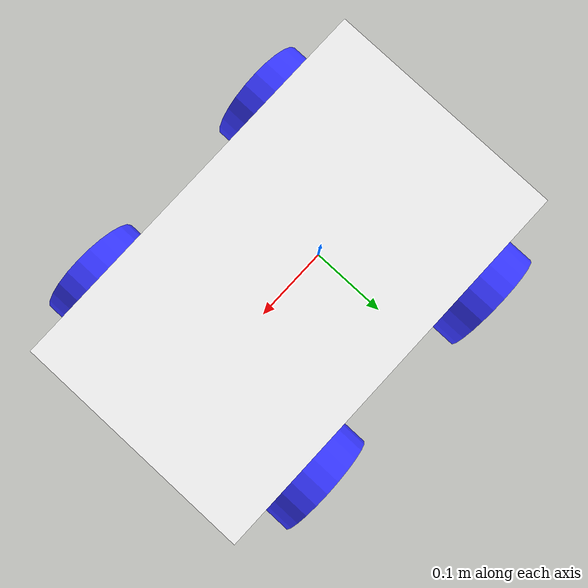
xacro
<?xml version="1.0"?>
<robot xmlns:xacro="http://www.ros.org/wiki/xacro"  >

    <xacro:include filename="inertial_macros.xacro" />

    <material name="white">
        <color rgba="1 1 1 1"/>
    </material>

    <material name="orange">
        <color rgba="1 0.3 0.1 1"/>
    </material>

    <material name="blue">
        <color rgba="0.2 0.2 1 1"/>
    </material>

    <material name="black">
        <color rgba="0 0 0 1"/>
    </material>

    <link name="base_link">

    </link>

    <joint name="chassis_joint" type="fixed">
        <parent link="base_link"/>
        <child link="chassis"/>
        <origin xyz="-0.1 0 0"/>
    </joint>

<link name="chassis">
    <visual>
        <origin xyz="0.15 0 0.075" rpy="0 0 0"/>
        <geometry>
            <box size="0.5 0.3 0.1"/>
        </geometry>
        <material name="white"/>
    </visual>
    <collision>
        <origin xyz="0.15 0 0.075" rpy="0 0 0"/>
        <geometry>
            <box size="0.5 0.3 0.1"/>
        </geometry>
    </collision>
     <xacro:inertial_box mass="0.5" x="0.5" y="0.3" z="0.1">
        <origin xyz="0.15 0 0.075" rpy="0 0 0"/>
    </xacro:inertial_box>
</link>

    <!-- LEFT WHEEL BACK-->

<joint name="left_wheel_Back_joint" type="continuous">
    <parent link="base_link"/>
    <child link="left_Back_wheel"/>
    <origin xyz="-0.1 0.175 0" rpy="-${pi/2} 0 0"/>
    <axis xyz="0 0 1"/>
</joint>

<link name="left_Back_wheel">
    <visual>
        <geometry>
            <cylinder length="0.04" radius="0.07" />
        </geometry>
        <material name="blue"/>
    </visual>
    <collision>
        <geometry>
            <cylinder length="0.04" radius="0.07" />
        </geometry>
        <material name="blue"/>
    </collision>
    <xacro:inertial_cylinder mass="0.1" length="0.07" radius="0.07">
        <origin xyz="0 0 0" rpy="0 0 0"/>
    </xacro:inertial_cylinder>
</link>

<!-- LEFT WHEEL FRONT-->

<joint name="left_wheel_Front_joint" type="continuous">
    <parent link="base_link"/>
    <child link="left_Front_wheel"/>
    <origin xyz="0.2 0.175 0" rpy="-${pi/2} 0 0"/>
    <axis xyz="0 0 1"/>
</joint>

<link name="left_Front_wheel">
    <visual>
        <geometry>
            <cylinder length="0.04" radius="0.07" />
        </geometry>
        <material name="blue"/>
    </visual>
    <collision>
        <geometry>
            <cylinder length="0.04" radius="0.07" />
        </geometry>
        <material name="blue"/>
    </collision>
    <xacro:inertial_cylinder mass="0.1" length="0.07" radius="0.07">
        <origin xyz="0 0 0" rpy="0 0 0"/>
    </xacro:inertial_cylinder>
</link>
<!-- RIGHT WHEEL BACK-->

<joint name="right_wheel_Back_joint" type="continuous">
    <parent link="base_link"/>
    <child link="right_Back_wheel"/>
    <origin xyz="-0.1 -0.175 0" rpy="${pi/2} 0 0"/>
    <axis xyz="0 0 -1"/>
</joint>

<link name="right_Back_wheel">
    <visual>
        <geometry>
            <cylinder length="0.04" radius="0.07" />
        </geometry>
        <material name="blue"/>
    </visual>
    <collision>
        <geometry>
            <cylinder length="0.04" radius="0.07" />
        </geometry>
        <material name="blue"/>
    </collision>
    <xacro:inertial_cylinder mass="0.1" length="0.07" radius="0.07">
        <origin xyz="0 0 0" rpy="0 0 0"/>
    </xacro:inertial_cylinder>

</link>

<!-- RIGHT WHEEL FRONT-->

<joint name="right_wheel_Front_joint" type="continuous">
    <parent link="base_link"/>
    <child link="right_Front_wheel"/>
    <origin xyz="0.2 -0.175 0" rpy="${pi/2} 0 0"/>
    <axis xyz="0 0 -1"/>
</joint>

<link name="right_Front_wheel">
    <visual>
        <geometry>
            <cylinder length="0.04" radius="0.07" />
        </geometry>
        <material name="blue"/>
    </visual>
    <collision>
        <geometry>
            <cylinder length="0.04" radius="0.07" />
        </geometry>
        <material name="blue"/>
    </collision>
    <xacro:inertial_cylinder mass="0.1" length="0.07" radius="0.07">
        <origin xyz="0 0 0" rpy="0 0 0"/>
    </xacro:inertial_cylinder>

</link>

</robot>
